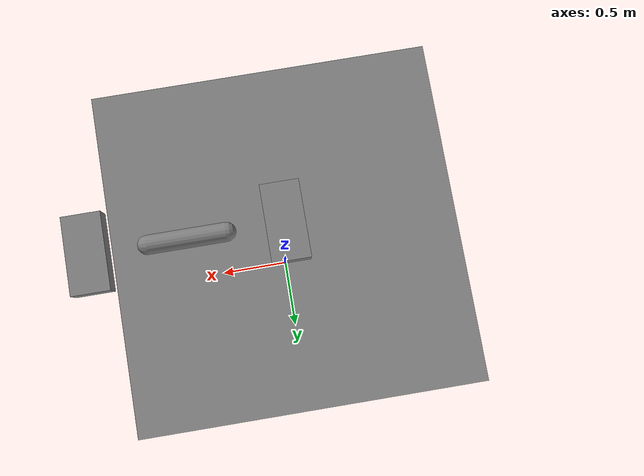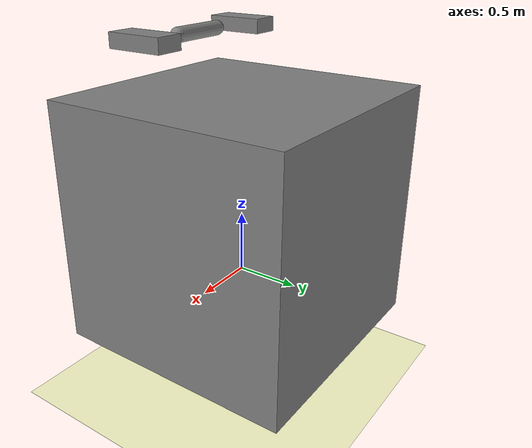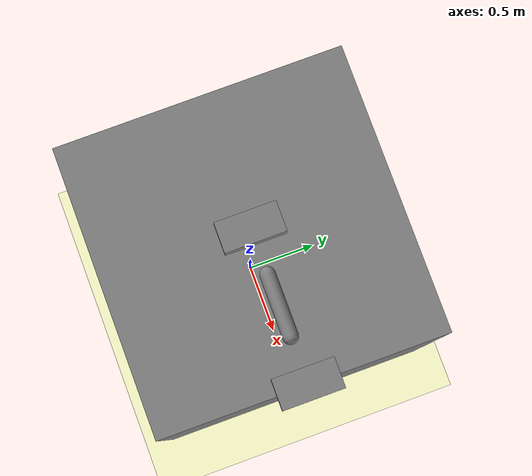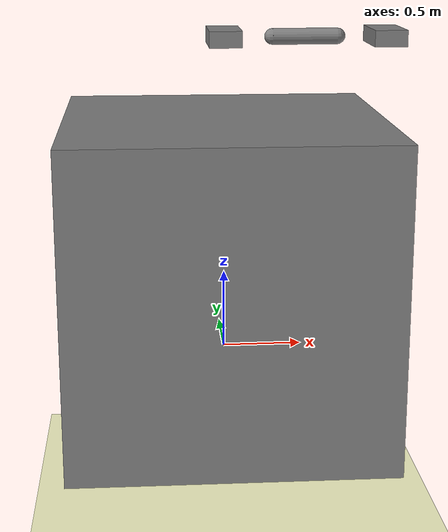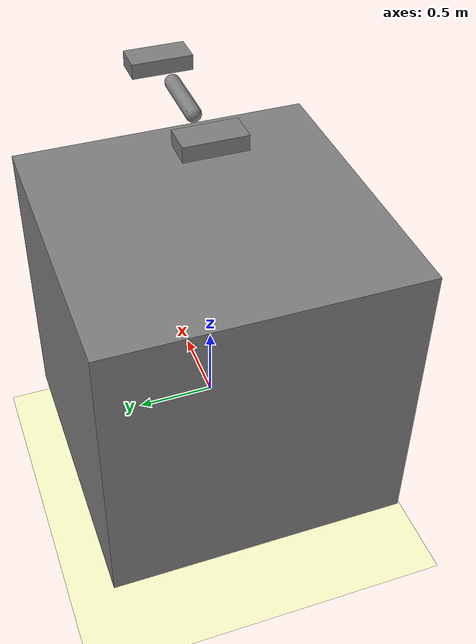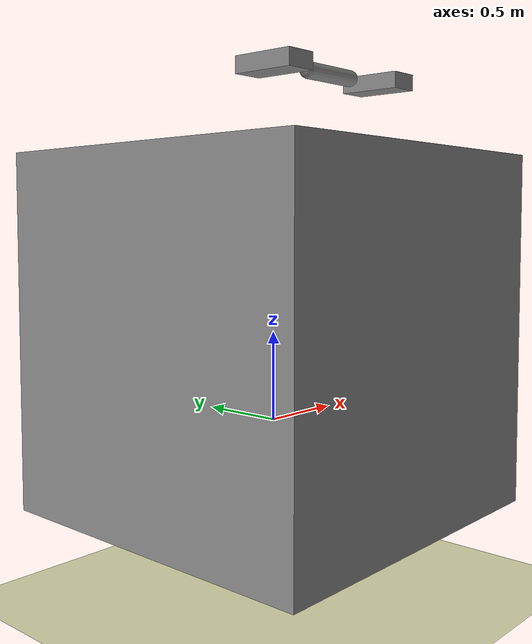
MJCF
<mujoco>
    <include file="gpt_robot.xml" />
	<size njmax="1" nconmax="0" />
	<asset>
		<material name="obstacle_mat" rgba="0.5 0.5 0.5 1" />
	</asset>
	<worldbody>
		<light name="sun" diffuse="1 1 1" specular="1 1 1" exponent="30" pos="0 0 10" dir="0 0 -1" />
		<geom name="ground" pos="0 0 -1" size="20 20 0.1" type="plane" rgba="1 1 0.8 1" />
		<geom name="obstacle" pos="0 0 0.5" size="1 1 1" type="box" material="obstacle_mat" />
	</worldbody>
</mujoco>

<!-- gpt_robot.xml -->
<mujoco>

<worldbody>
    <!-- Define the body for the first module -->
		<body name="module1_body" pos="0 0 2">
            <joint name="module1_joint" type="free" />
			<geom name="module1_geom" type="box" size="0.1 0.2 0.05" rgba="0.5 0.5 0.5 1" />
		</body>
		<!-- Define the body for the second module -->
		<body name="module2_body" pos="1 0 2">
            <joint name="module2_joint" type="free" />
			<geom name="module2_geom" type="box" size="0.1 0.2 0.05" rgba="0.5 0.5 0.5 1" />
		</body>
		<!-- Define the arm connecting the two modules -->
		<body name="arm_body" pos=".5 0 2">
			<joint name="arm_joint" type="hinge" pos="0 0 0.1" axis="1 0 0" />
			<geom name="arm_geom" type="capsule" size="0.05 0.2" rgba="0.5 0.5 0.5 1" euler="0 90 0" />
		</body>
</worldbody>
</mujoco>
